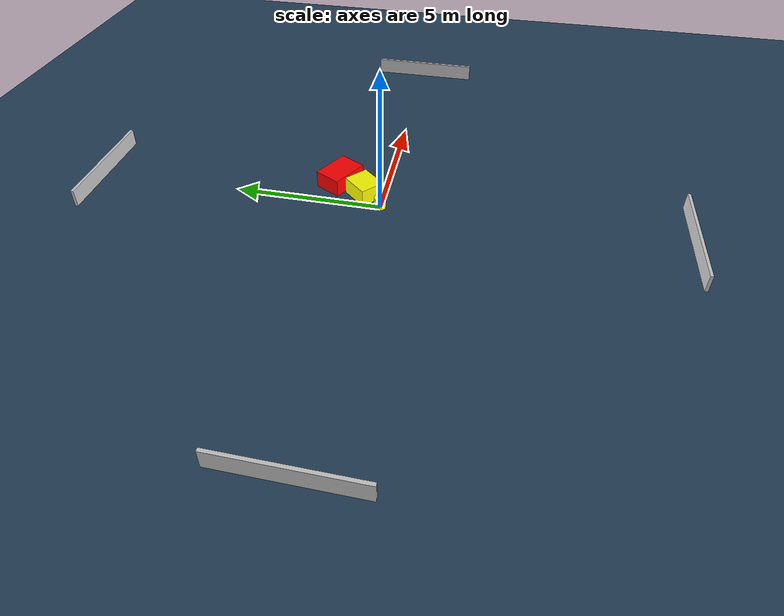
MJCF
<?xml version="1.0" ?>
<mujoco model="generated_environment">
  <option timestep="0.01" integrator="RK4" cone="elliptic"/>
  <default>
    <geom density="1"/>
  </default>
  <asset>
    <texture builtin="gradient" height="3072" name="skybox" rgb1="0.3 0.5 0.7" rgb2="0 0 0" type="skybox" width="512"/>
    <texture builtin="checker" height="300" name="groundplane" rgb1="0.2 0.3 0.4" rgb2="0.1 0.2 0.3" type="2d" width="300"/>
    <material name="groundplane" reflectance="0.2" texrepeat="5 5" texture="groundplane"/>
  </asset>
  <worldbody>
    <light dir="0 0 -1" directional="true" pos="0 0 1.5"/>
    <geom condim="3" friction="0.5 0.005 0.001" material="groundplane" name="floor" pos="0 0 0" size="0 0 0.05" type="plane"/>
    <body name="walls">
      <geom name="wall_1" condim="4" pos="-10.0 0.0 0.3" rgba="0.800000011920929 0.800000011920929 0.800000011920929 1.0" size="0.05 2.0 0.3" type="box"/>
      <geom name="wall_2" condim="4" pos="10.0 0.0 0.3" rgba="0.800000011920929 0.800000011920929 0.800000011920929 1.0" size="0.05 2.0 0.3" type="box"/>
      <geom name="wall_3" condim="4" pos="0.0 -10.0 0.3" rgba="0.800000011920929 0.800000011920929 0.800000011920929 1.0" size="2.0 0.05 0.3" type="box"/>
      <geom name="wall_4" condim="4" pos="0.0 10.0 0.3" rgba="0.800000011920929 0.800000011920929 0.800000011920929 1.0" size="2.0 0.05 0.3" type="box"/>
    </body>
    <body name="robot">
      <joint name="joint_x" type="slide" pos="0 0 0" axis="1 0 0"/>
      <joint name="joint_y" type="slide" pos="0 0 0" axis="0 1 0"/>
      <geom name="robot" type="cylinder" pos="0.0 0.0 0.2" size="0.2 0.2 0.0" mass="5.0" friction="1.0 0.005 0.0001" condim="4" rgba="1.0 1.0 0.0 1.0"/>
    </body>
    <body name="obstacle_1_movable">
      <geom name="obstacle_1_movable" condim="4" pos="0.5739573161080476 0.6634164392323697 0.3" euler="0 0 137.97945138227595" friction="0.0 0.005 0.001" rgba="1.0 1.0 0.0 1.0" size="0.4301731338619167 0.49940550459610866 0.3" type="box" mass="0.1"/>
      <joint type="free"/>
    </body>
    <body name="obstacle_2_static">
      <geom name="obstacle_2_static" condim="4" pos="1.106004310692706 1.6389745994693612 0.3" euler="0 0 331.74259340468774" friction="0.0 0.005 0.001" rgba="1.0 0.0 0.0 1.0" size="0.6672896829226924 0.4768267456924856 0.3" type="box"/>
    </body>
  </worldbody>
  <actuator>
    <motor name="actuator_x" joint="joint_x" gear="1" ctrlrange="-1 1"/>
    <motor name="actuator_y" joint="joint_y" gear="1" ctrlrange="-1 1"/>
  </actuator>
</mujoco>
